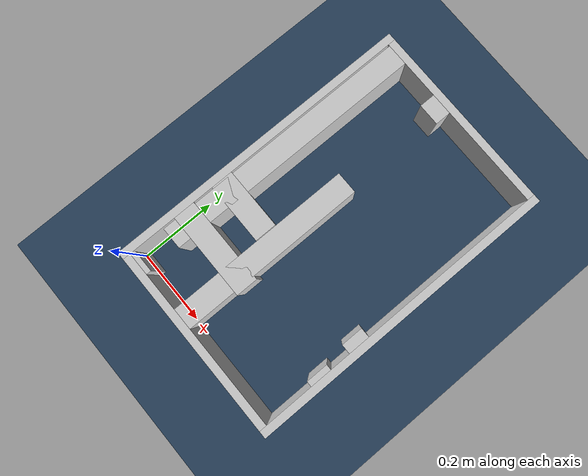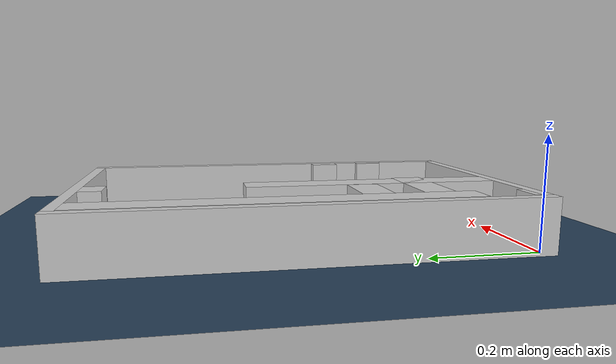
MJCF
<?xml version="1.0" ?>
<mujoco model="generated_real_template">
  <compiler angle="degree"/>
  <option timestep="0.002" integrator="implicitfast" iterations="100" cone="elliptic"/>
  <default>
    <geom density="1"/>
  </default>
  <asset>
    <texture builtin="gradient" height="3072" rgb1="0.3 0.5 0.7" rgb2="0 0 0" type="skybox" width="512"/>
    <texture builtin="checker" height="300" mark="edge" markrgb="0.8 0.8 0.8" name="groundplane" rgb1="0.2 0.3 0.4" rgb2="0.1 0.2 0.3" type="2d" width="300"/>
    <material name="groundplane" reflectance="0.2" texrepeat="5 5" texture="groundplane" texuniform="true"/>
  </asset>
  <worldbody>
    <light dir="0 0 -1" directional="true" pos="0 0 1.5"/>
    <geom name="floor" type="plane" condim="4" friction="0.5 0.005 0.001" material="groundplane" size="0 0 0.05"/>
    <body name="walls">
      <geom name="wall_boundary_left" type="box" condim="4" friction="1.0 0.005 0.0001" rgba="0.8 0.8 0.8 1" pos="-0.010000 0.387500 0.050000" euler="0 0 0.000000" size="0.010000 0.407500 0.050000"/>
      <geom name="wall_boundary_right" type="box" condim="4" friction="1.0 0.005 0.0001" rgba="0.8 0.8 0.8 1" pos="0.500000 0.387500 0.050000" euler="0 0 0.000000" size="0.010000 0.407500 0.050000"/>
      <geom name="wall_boundary_bottom" type="box" condim="4" friction="1.0 0.005 0.0001" rgba="0.8 0.8 0.8 1" pos="0.245000 -0.010000 0.050000" euler="0 0 0.000000" size="0.245000 0.010000 0.050000"/>
      <geom name="wall_boundary_top" type="box" condim="4" friction="1.0 0.005 0.0001" rgba="0.8 0.8 0.8 1" pos="0.245000 0.785000 0.050000" euler="0 0 0.000000" size="0.245000 0.010000 0.050000"/>
      <geom name="wall_inner_1_1" type="box" condim="4" friction="1.0 0.005 0.0001" rgba="0.8 0.8 0.8 1" pos="0.191333 0.241664 0.050000" euler="0 0 90.000000" size="0.241664 0.028500 0.050000"/>
      <geom name="wall_inner_1_2" type="box" condim="4" friction="1.0 0.005 0.0001" rgba="0.8 0.8 0.8 1" pos="0.191333 0.754566 0.050000" euler="0 0 90.000000" size="0.020434 0.028500 0.050000"/>
      <geom name="wall_inner_2_1" type="box" condim="4" friction="1.0 0.005 0.0001" rgba="0.8 0.8 0.8 1" pos="0.080616 0.266134 0.050000" euler="0 0 0.000000" size="0.080616 0.028500 0.050000"/>
      <geom name="wall_inner_2_2" type="box" condim="4" friction="1.0 0.005 0.0001" rgba="0.8 0.8 0.8 1" pos="0.477322 0.266134 0.050000" euler="0 0 0.000000" size="0.012678 0.028500 0.050000"/>
      <geom name="wall_inner_3_1" type="box" condim="4" friction="1.0 0.005 0.0001" rgba="0.8 0.8 0.8 1" pos="0.032655 0.006460 0.050000" euler="0 0 90.000000" size="0.006460 0.028500 0.050000"/>
      <geom name="wall_inner_3_2" type="box" condim="4" friction="1.0 0.005 0.0001" rgba="0.8 0.8 0.8 1" pos="0.032655 0.434087 0.050000" euler="0 0 90.000000" size="0.340913 0.028500 0.050000"/>
      <geom name="wall_inner_4_1" type="box" condim="4" friction="1.0 0.005 0.0001" rgba="0.8 0.8 0.8 1" pos="0.114932 0.155684 0.050000" euler="0 0 0.000000" size="0.114932 0.028500 0.050000"/>
      <geom name="wall_inner_4_2" type="box" condim="4" friction="1.0 0.005 0.0001" rgba="0.8 0.8 0.8 1" pos="0.482633 0.155684 0.050000" euler="0 0 0.000000" size="0.007367 0.028500 0.050000"/>
    </body>
  </worldbody>
</mujoco>
